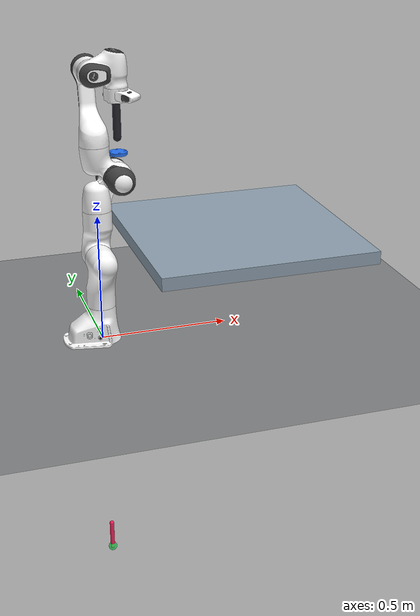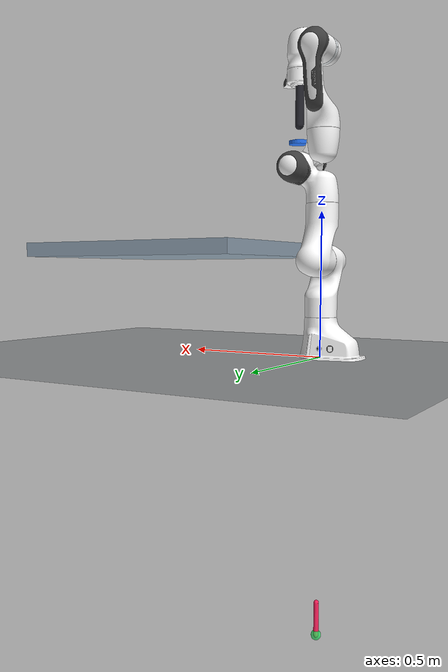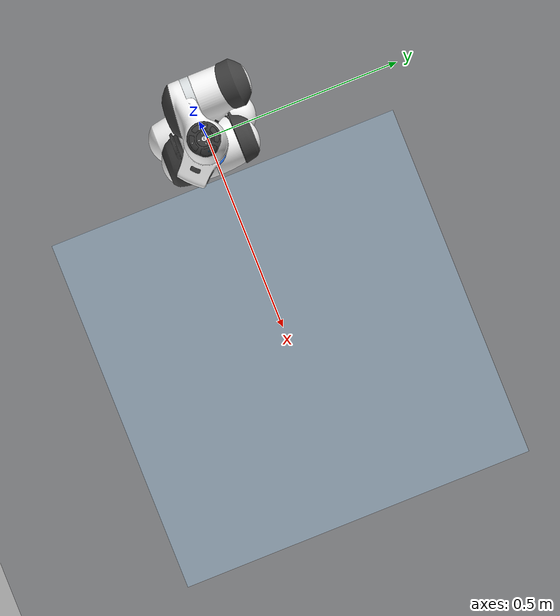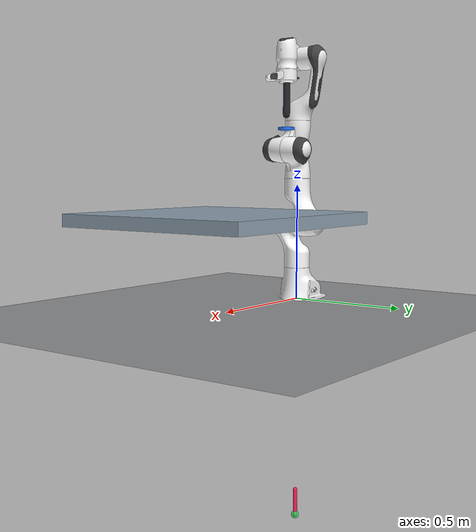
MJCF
<!-- Derived from MuJoCo Menagerie panda_nohand.xml. See UPSTREAM.md. -->
<mujoco model="panda torque table">
  <compiler angle="radian" meshdir="menagerie/franka_emika_panda/assets" autolimits="true"/>

  <option timestep="0.001" integrator="implicitfast" impratio="10">
    <flag energy="enable"/>
  </option>

  <visual>
    <global offwidth="1280" offheight="800"/>
    <headlight diffuse="0.6 0.6 0.6" ambient="0.25 0.25 0.25" specular="0 0 0"/>
  </visual>

  <default>
    <default class="panda">
      <material specular="0.5" shininess="0.25"/>
      <joint armature="0.1" damping="1" axis="0 0 1" range="-2.8973 2.8973"/>
      <general dyntype="none" biastype="affine" ctrlrange="-2.8973 2.8973" forcerange="-87 87"/>
      <default class="finger">
        <joint axis="0 1 0" type="slide" range="0 0.04"/>
      </default>

      <default class="panda/visual">
        <geom type="mesh" contype="0" conaffinity="0" group="2"/>
      </default>
      <default class="panda/collision">
        <!-- Keep visual collision shells, but exclude them from this
             table-contact PoC. Only the finite tool pad and table collide. -->
        <geom type="mesh" group="3" contype="0" conaffinity="0"/>
      </default>
      <site size="0.001" rgba="0.5 0.5 0.5 0.3" group="4"/>
    </default>
  </default>

  <asset>
    <material class="panda" name="white" rgba="1 1 1 1"/>
    <material class="panda" name="off_white" rgba="0.901961 0.921569 0.929412 1"/>
    <material class="panda" name="dark_grey" rgba="0.25 0.25 0.25 1"/>
    <material class="panda" name="green" rgba="0 1 0 1"/>
    <material class="panda" name="light_blue" rgba="0.039216 0.541176 0.780392 1"/>

    <!-- Collision meshes -->
    <mesh name="link0_c" file="link0.stl"/>
    <mesh name="link1_c" file="link1.stl"/>
    <mesh name="link2_c" file="link2.stl"/>
    <mesh name="link3_c" file="link3.stl"/>
    <mesh name="link4_c" file="link4.stl"/>
    <mesh name="link5_c0" file="link5_collision_0.obj"/>
    <mesh name="link5_c1" file="link5_collision_1.obj"/>
    <mesh name="link5_c2" file="link5_collision_2.obj"/>
    <mesh name="link6_c" file="link6.stl"/>
    <mesh name="link7_c" file="link7.stl"/>

    <!-- Visual meshes -->
    <mesh file="link0_0.obj"/>
    <mesh file="link0_1.obj"/>
    <mesh file="link0_2.obj"/>
    <mesh file="link0_3.obj"/>
    <mesh file="link0_4.obj"/>
    <mesh file="link0_5.obj"/>
    <mesh file="link0_7.obj"/>
    <mesh file="link0_8.obj"/>
    <mesh file="link0_9.obj"/>
    <mesh file="link0_10.obj"/>
    <mesh file="link0_11.obj"/>
    <mesh file="link1.obj"/>
    <mesh file="link2.obj"/>
    <mesh file="link3_0.obj"/>
    <mesh file="link3_1.obj"/>
    <mesh file="link3_2.obj"/>
    <mesh file="link3_3.obj"/>
    <mesh file="link4_0.obj"/>
    <mesh file="link4_1.obj"/>
    <mesh file="link4_2.obj"/>
    <mesh file="link4_3.obj"/>
    <mesh file="link5_0.obj"/>
    <mesh file="link5_1.obj"/>
    <mesh file="link5_2.obj"/>
    <mesh file="link6_0.obj"/>
    <mesh file="link6_1.obj"/>
    <mesh file="link6_2.obj"/>
    <mesh file="link6_3.obj"/>
    <mesh file="link6_4.obj"/>
    <mesh file="link6_5.obj"/>
    <mesh file="link6_6.obj"/>
    <mesh file="link6_7.obj"/>
    <mesh file="link6_8.obj"/>
    <mesh file="link6_9.obj"/>
    <mesh file="link6_10.obj"/>
    <mesh file="link6_11.obj"/>
    <mesh file="link6_12.obj"/>
    <mesh file="link6_13.obj"/>
    <mesh file="link6_14.obj"/>
    <mesh file="link6_15.obj"/>
    <mesh file="link6_16.obj"/>
    <mesh file="link7_0.obj"/>
    <mesh file="link7_1.obj"/>
    <mesh file="link7_2.obj"/>
    <mesh file="link7_3.obj"/>
    <mesh file="link7_4.obj"/>
    <mesh file="link7_5.obj"/>
    <mesh file="link7_6.obj"/>
    <mesh file="link7_7.obj"/>
  </asset>

  <worldbody>
    <light name="top" pos="0 0 2" mode="trackcom"/>
    <light name="fill" pos="0.5 -1 1.3" dir="0 0.4 -1"/>
    <camera name="overview" pos="1.25 -1.35 1.10" xyaxes="0.73 0.68 0 -0.31 0.33 0.89"/>
    <geom name="floor" type="plane" size="2 2 0.05" rgba="0.14 0.16 0.18 1"
      contype="0" conaffinity="0"/>
    <geom name="table" type="box" pos="0.55 0 0.375" size="0.42 0.42 0.025"
      rgba="0.55 0.62 0.68 1" friction="0.35 0.01 0.001" solref="0.10 1"
      solimp="0.05 0.95 0.005" margin="0.001" contype="1" conaffinity="1"/>
    <body name="human_indicator" mocap="true" pos="0 0 -1">
      <geom name="human_force_arrow" type="capsule" fromto="0 0 0 0 0 0.12"
        size="0.009" rgba="0.95 0.12 0.35 0.9" contype="0" conaffinity="0"/>
    </body>
    <body name="reference_indicator" mocap="true" pos="0 0 -1">
      <geom name="reference_setpoint" type="sphere" size="0.018"
        rgba="0.1 0.95 0.35 0.7" contype="0" conaffinity="0"/>
    </body>
    <body name="link0" childclass="panda">
      <inertial mass="0.629769" pos="-0.041018 -0.00014 0.049974"
        fullinertia="0.00315 0.00388 0.004285 8.2904e-7 0.00015 8.2299e-6"/>
      <geom mesh="link0_0" material="off_white" class="panda/visual"/>
      <geom mesh="link0_1" material="dark_grey" class="panda/visual"/>
      <geom mesh="link0_2" material="off_white" class="panda/visual"/>
      <geom mesh="link0_3" material="dark_grey" class="panda/visual"/>
      <geom mesh="link0_4" material="off_white" class="panda/visual"/>
      <geom mesh="link0_5" material="dark_grey" class="panda/visual"/>
      <geom mesh="link0_7" material="white" class="panda/visual"/>
      <geom mesh="link0_8" material="white" class="panda/visual"/>
      <geom mesh="link0_9" material="dark_grey" class="panda/visual"/>
      <geom mesh="link0_10" material="off_white" class="panda/visual"/>
      <geom mesh="link0_11" material="white" class="panda/visual"/>
      <geom mesh="link0_c" class="panda/collision"/>
      <body name="link1" pos="0 0 0.333">
        <inertial mass="4.970684" pos="0.003875 0.002081 -0.04762"
          fullinertia="0.70337 0.70661 0.0091170 -0.00013900 0.0067720 0.019169"/>
        <joint name="joint1"/>
        <geom material="white" mesh="link1" class="panda/visual"/>
        <geom mesh="link1_c" class="panda/collision"/>
        <body name="link2" quat="1 -1 0 0">
          <inertial mass="0.646926" pos="-0.003141 -0.02872 0.003495"
            fullinertia="0.0079620 2.8110e-2 2.5995e-2 -3.925e-3 1.0254e-2 7.04e-4"/>
          <joint name="joint2" range="-1.7628 1.7628"/>
          <geom material="white" mesh="link2" class="panda/visual"/>
          <geom mesh="link2_c" class="panda/collision"/>
          <body name="link3" pos="0 -0.316 0" quat="1 1 0 0">
            <joint name="joint3"/>
            <inertial mass="3.228604" pos="2.7518e-2 3.9252e-2 -6.6502e-2"
              fullinertia="3.7242e-2 3.6155e-2 1.083e-2 -4.761e-3 -1.1396e-2 -1.2805e-2"/>
            <geom mesh="link3_0" material="white" class="panda/visual"/>
            <geom mesh="link3_1" material="white" class="panda/visual"/>
            <geom mesh="link3_2" material="white" class="panda/visual"/>
            <geom mesh="link3_3" material="dark_grey" class="panda/visual"/>
            <geom mesh="link3_c" class="panda/collision"/>
            <body name="link4" pos="0.0825 0 0" quat="1 1 0 0">
              <inertial mass="3.587895" pos="-5.317e-2 1.04419e-1 2.7454e-2"
                fullinertia="2.5853e-2 1.9552e-2 2.8323e-2 7.796e-3 -1.332e-3 8.641e-3"/>
              <joint name="joint4" range="-3.0718 -0.0698"/>
              <geom mesh="link4_0" material="white" class="panda/visual"/>
              <geom mesh="link4_1" material="white" class="panda/visual"/>
              <geom mesh="link4_2" material="dark_grey" class="panda/visual"/>
              <geom mesh="link4_3" material="white" class="panda/visual"/>
              <geom mesh="link4_c" class="panda/collision"/>
              <site name="forearm_site" pos="0 0.12 0" size="0.025"
                rgba="1 0.55 0.05 0.85"/>
              <body name="link5" pos="-0.0825 0.384 0" quat="1 -1 0 0">
                <inertial mass="1.225946" pos="-1.1953e-2 4.1065e-2 -3.8437e-2"
                  fullinertia="3.5549e-2 2.9474e-2 8.627e-3 -2.117e-3 -4.037e-3 2.29e-4"/>
                <joint name="joint5"/>
                <geom mesh="link5_0" material="dark_grey" class="panda/visual"/>
                <geom mesh="link5_1" material="white" class="panda/visual"/>
                <geom mesh="link5_2" material="white" class="panda/visual"/>
                <geom mesh="link5_c0" class="panda/collision"/>
                <geom mesh="link5_c1" class="panda/collision"/>
                <geom mesh="link5_c2" class="panda/collision"/>
                <body name="link6" quat="1 1 0 0">
                  <inertial mass="1.666555" pos="6.0149e-2 -1.4117e-2 -1.0517e-2"
                    fullinertia="1.964e-3 4.354e-3 5.433e-3 1.09e-4 -1.158e-3 3.41e-4"/>
                  <joint name="joint6" range="-0.0175 3.7525"/>
                  <geom mesh="link6_0" material="off_white" class="panda/visual"/>
                  <geom mesh="link6_1" material="white" class="panda/visual"/>
                  <geom mesh="link6_2" material="dark_grey" class="panda/visual"/>
                  <geom mesh="link6_3" material="white" class="panda/visual"/>
                  <geom mesh="link6_4" material="white" class="panda/visual"/>
                  <geom mesh="link6_5" material="white" class="panda/visual"/>
                  <geom mesh="link6_6" material="white" class="panda/visual"/>
                  <geom mesh="link6_7" material="light_blue" class="panda/visual"/>
                  <geom mesh="link6_8" material="light_blue" class="panda/visual"/>
                  <geom mesh="link6_9" material="dark_grey" class="panda/visual"/>
                  <geom mesh="link6_10" material="dark_grey" class="panda/visual"/>
                  <geom mesh="link6_11" material="white" class="panda/visual"/>
                  <geom mesh="link6_12" material="green" class="panda/visual"/>
                  <geom mesh="link6_13" material="white" class="panda/visual"/>
                  <geom mesh="link6_14" material="dark_grey" class="panda/visual"/>
                  <geom mesh="link6_15" material="dark_grey" class="panda/visual"/>
                  <geom mesh="link6_16" material="white" class="panda/visual"/>
                  <geom mesh="link6_c" class="panda/collision"/>
                  <body name="link7" pos="0.088 0 0" quat="1 1 0 0">
                    <inertial mass="7.35522e-01" pos="1.0517e-2 -4.252e-3 6.1597e-2"
                      fullinertia="1.2516e-2 1.0027e-2 4.815e-3 -4.28e-4 -1.196e-3 -7.41e-4"/>
                    <joint name="joint7"/>
                    <geom mesh="link7_0" material="white" class="panda/visual"/>
                    <geom mesh="link7_1" material="dark_grey" class="panda/visual"/>
                    <geom mesh="link7_2" material="dark_grey" class="panda/visual"/>
                    <geom mesh="link7_3" material="dark_grey" class="panda/visual"/>
                    <geom mesh="link7_4" material="dark_grey" class="panda/visual"/>
                    <geom mesh="link7_5" material="dark_grey" class="panda/visual"/>
                    <geom mesh="link7_6" material="dark_grey" class="panda/visual"/>
                    <geom mesh="link7_7" material="white" class="panda/visual"/>
                    <geom mesh="link7_c" class="panda/collision"/>
                    <body name="attachment" pos="0 0 0.107" quat="0.3826834 0 0 0.9238795">
                      <site name="attachment_site"/>
                      <geom name="tool_shaft" type="capsule" fromto="0 0 0 0 0 0.13"
                        size="0.015" rgba="0.15 0.15 0.18 1" contype="0" conaffinity="0"/>
                      <geom name="tool_pad_visual" type="cylinder" pos="0 0 0.189"
                        size="0.035 0.006" mass="0.06245"
                        rgba="0.15 0.45 0.95 1" contype="0" conaffinity="0"/>
                      <!-- Retained, disabled single-point geometry for the
                           reproducible contact-layout ablation. -->
                      <geom name="tool_contact_single" type="sphere" pos="0 0 0.16"
                        size="0.035" mass="0.000001" rgba="0 0 0 0"
                        friction="0.35 0.01 0.001" solref="0.10 1"
                        solimp="0.05 0.95 0.005" margin="0.001"
                        contype="1" conaffinity="1"/>
                      <!-- Four soft collision elements form a finite-area
                           contact patch without adding a pad resonance. -->
                      <geom name="tool_contact_front_left" type="sphere"
                        pos="0.019 0.019 0.188" size="0.007" mass="0.0001"
                        rgba="0.12 0.38 0.85 1" friction="0.35 0.01 0.001"
                        solref="0.10 1" solimp="0.05 0.95 0.005" margin="0.001"
                        contype="1" conaffinity="1"/>
                      <geom name="tool_contact_front_right" type="sphere"
                        pos="0.019 -0.019 0.188" size="0.007" mass="0.0001"
                        rgba="0.12 0.38 0.85 1" friction="0.35 0.01 0.001"
                        solref="0.10 1" solimp="0.05 0.95 0.005" margin="0.001"
                        contype="1" conaffinity="1"/>
                      <geom name="tool_contact_rear_left" type="sphere"
                        pos="-0.019 0.019 0.188" size="0.007" mass="0.0001"
                        rgba="0.12 0.38 0.85 1" friction="0.35 0.01 0.001"
                        solref="0.10 1" solimp="0.05 0.95 0.005" margin="0.001"
                        contype="1" conaffinity="1"/>
                      <geom name="tool_contact_rear_right" type="sphere"
                        pos="-0.019 -0.019 0.188" size="0.007" mass="0.0001"
                        rgba="0.12 0.38 0.85 1" friction="0.35 0.01 0.001"
                        solref="0.10 1" solimp="0.05 0.95 0.005" margin="0.001"
                        contype="1" conaffinity="1"/>
                      <site name="tool_site" pos="0 0 0.16" size="0.009"
                        rgba="1 0.15 0.15 1"/>
                    </body>
                  </body>
                </body>
              </body>
            </body>
          </body>
        </body>
      </body>
    </body>
  </worldbody>

  <actuator>
    <!-- Direct torque command: gain=1, zero affine bias.  ctrl and actuator
         force are both limited to Panda's nominal joint limits. -->
    <motor name="actuator1" joint="joint1" gear="1" ctrlrange="-87 87" forcerange="-87 87"/>
    <motor name="actuator2" joint="joint2" gear="1" ctrlrange="-87 87" forcerange="-87 87"/>
    <motor name="actuator3" joint="joint3" gear="1" ctrlrange="-87 87" forcerange="-87 87"/>
    <motor name="actuator4" joint="joint4" gear="1" ctrlrange="-87 87" forcerange="-87 87"/>
    <motor name="actuator5" joint="joint5" gear="1" ctrlrange="-12 12" forcerange="-12 12"/>
    <motor name="actuator6" joint="joint6" gear="1" ctrlrange="-12 12" forcerange="-12 12"/>
    <motor name="actuator7" joint="joint7" gear="1" ctrlrange="-12 12" forcerange="-12 12"/>
  </actuator>

  <contact>
    <exclude body1="link0" body2="link1"/>
  </contact>

  <keyframe>
    <key name="home" qpos="0 0 0 -1.57079 0 1.57079 -0.7853" ctrl="0 0 0 0 0 0 0"/>
  </keyframe>
</mujoco>
